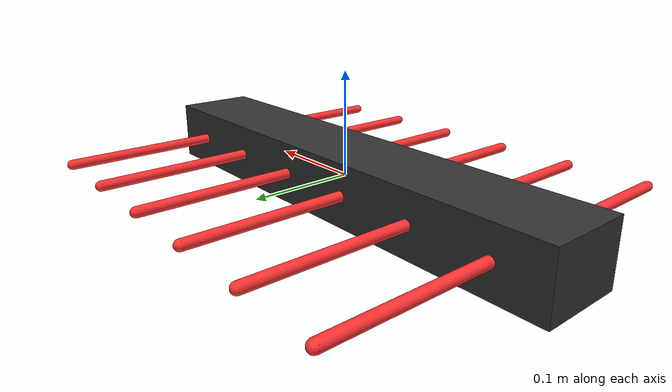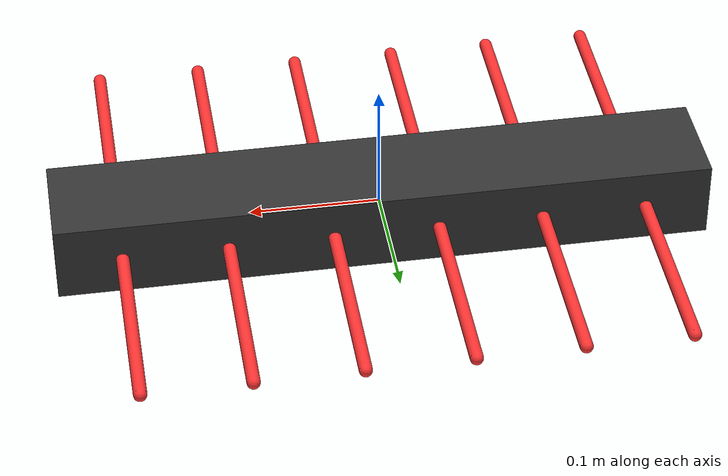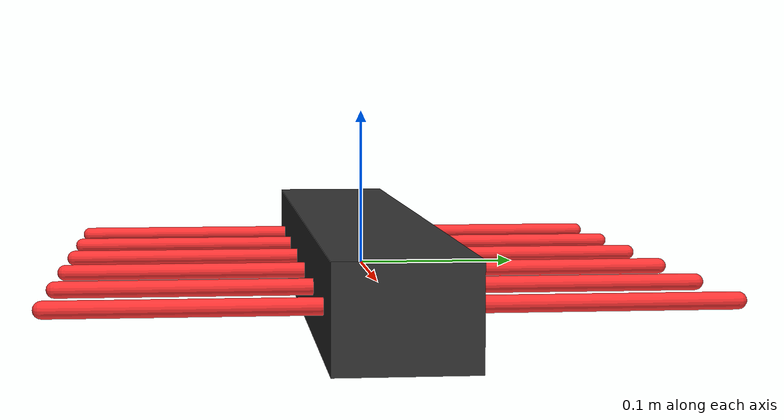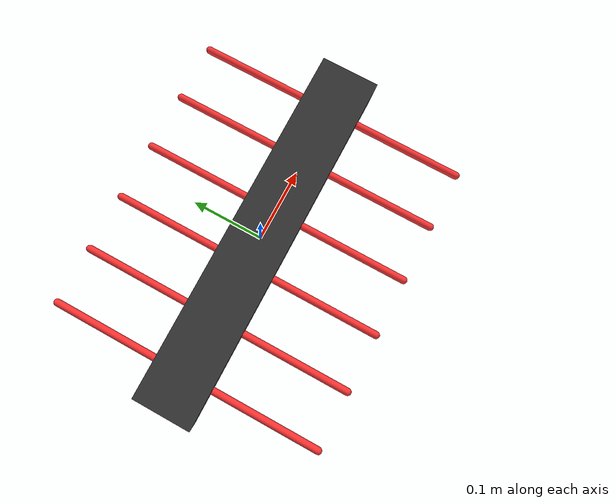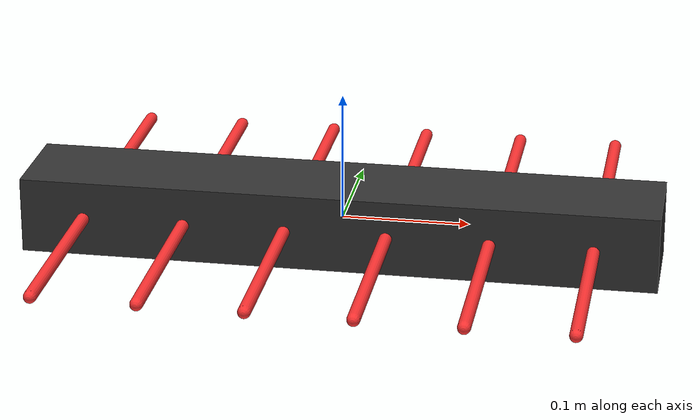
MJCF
<?xml version="1.0" ?>
<mujoco model="anomalocaris_rods">
  <compiler angle="degree" coordinate="local"/>
  <option timestep="0.001" gravity="0 0 0" density="1000" viscosity="0.002"/>
  <worldbody>
    <light directional="true" diffuse="0.8 0.8 0.8" pos="0 0 3" dir="0 0 -1"/>
    <body name="torso" pos="0 0 0">
      <geom type="box" size="0.25 0.04 0.03" rgba="0.2 0.2 0.2 1" mass="1.0"/>
      <body name="rod_L_1" pos="0.200 0.04 0">
        <joint name="joint_L_1" type="hinge" pos="0 0 0" axis="1 0 0" range="-45 45" damping="0.05"/>
        <geom type="capsule" fromto="0 0 0 0 0.15 0" size="0.005" rgba="1 0.2 0.2 1" mass="0.01"/>
      </body>
      <body name="rod_R_1" pos="0.200 -0.04 0">
        <joint name="joint_R_1" type="hinge" pos="0 0 0" axis="1 0 0" range="-45 45" damping="0.05"/>
        <geom type="capsule" fromto="0 0 0 0 -0.15 0" size="0.005" rgba="1 0.2 0.2 1" mass="0.01"/>
      </body>
      <body name="rod_L_2" pos="0.120 0.04 0">
        <joint name="joint_L_2" type="hinge" pos="0 0 0" axis="1 0 0" range="-45 45" damping="0.05"/>
        <geom type="capsule" fromto="0 0 0 0 0.15 0" size="0.005" rgba="1 0.2 0.2 1" mass="0.01"/>
      </body>
      <body name="rod_R_2" pos="0.120 -0.04 0">
        <joint name="joint_R_2" type="hinge" pos="0 0 0" axis="1 0 0" range="-45 45" damping="0.05"/>
        <geom type="capsule" fromto="0 0 0 0 -0.15 0" size="0.005" rgba="1 0.2 0.2 1" mass="0.01"/>
      </body>
      <body name="rod_L_3" pos="0.040 0.04 0">
        <joint name="joint_L_3" type="hinge" pos="0 0 0" axis="1 0 0" range="-45 45" damping="0.05"/>
        <geom type="capsule" fromto="0 0 0 0 0.15 0" size="0.005" rgba="1 0.2 0.2 1" mass="0.01"/>
      </body>
      <body name="rod_R_3" pos="0.040 -0.04 0">
        <joint name="joint_R_3" type="hinge" pos="0 0 0" axis="1 0 0" range="-45 45" damping="0.05"/>
        <geom type="capsule" fromto="0 0 0 0 -0.15 0" size="0.005" rgba="1 0.2 0.2 1" mass="0.01"/>
      </body>
      <body name="rod_L_4" pos="-0.040 0.04 0">
        <joint name="joint_L_4" type="hinge" pos="0 0 0" axis="1 0 0" range="-45 45" damping="0.05"/>
        <geom type="capsule" fromto="0 0 0 0 0.15 0" size="0.005" rgba="1 0.2 0.2 1" mass="0.01"/>
      </body>
      <body name="rod_R_4" pos="-0.040 -0.04 0">
        <joint name="joint_R_4" type="hinge" pos="0 0 0" axis="1 0 0" range="-45 45" damping="0.05"/>
        <geom type="capsule" fromto="0 0 0 0 -0.15 0" size="0.005" rgba="1 0.2 0.2 1" mass="0.01"/>
      </body>
      <body name="rod_L_5" pos="-0.120 0.04 0">
        <joint name="joint_L_5" type="hinge" pos="0 0 0" axis="1 0 0" range="-45 45" damping="0.05"/>
        <geom type="capsule" fromto="0 0 0 0 0.15 0" size="0.005" rgba="1 0.2 0.2 1" mass="0.01"/>
      </body>
      <body name="rod_R_5" pos="-0.120 -0.04 0">
        <joint name="joint_R_5" type="hinge" pos="0 0 0" axis="1 0 0" range="-45 45" damping="0.05"/>
        <geom type="capsule" fromto="0 0 0 0 -0.15 0" size="0.005" rgba="1 0.2 0.2 1" mass="0.01"/>
      </body>
      <body name="rod_L_6" pos="-0.200 0.04 0">
        <joint name="joint_L_6" type="hinge" pos="0 0 0" axis="1 0 0" range="-45 45" damping="0.05"/>
        <geom type="capsule" fromto="0 0 0 0 0.15 0" size="0.005" rgba="1 0.2 0.2 1" mass="0.01"/>
      </body>
      <body name="rod_R_6" pos="-0.200 -0.04 0">
        <joint name="joint_R_6" type="hinge" pos="0 0 0" axis="1 0 0" range="-45 45" damping="0.05"/>
        <geom type="capsule" fromto="0 0 0 0 -0.15 0" size="0.005" rgba="1 0.2 0.2 1" mass="0.01"/>
      </body>
    </body>
  </worldbody>
  <actuator>
    <position name="motor_L_1" joint="joint_L_1" kp="10.0"/>
    <position name="motor_R_1" joint="joint_R_1" kp="10.0"/>
    <position name="motor_L_2" joint="joint_L_2" kp="10.0"/>
    <position name="motor_R_2" joint="joint_R_2" kp="10.0"/>
    <position name="motor_L_3" joint="joint_L_3" kp="10.0"/>
    <position name="motor_R_3" joint="joint_R_3" kp="10.0"/>
    <position name="motor_L_4" joint="joint_L_4" kp="10.0"/>
    <position name="motor_R_4" joint="joint_R_4" kp="10.0"/>
    <position name="motor_L_5" joint="joint_L_5" kp="10.0"/>
    <position name="motor_R_5" joint="joint_R_5" kp="10.0"/>
    <position name="motor_L_6" joint="joint_L_6" kp="10.0"/>
    <position name="motor_R_6" joint="joint_R_6" kp="10.0"/>
  </actuator>
</mujoco>
